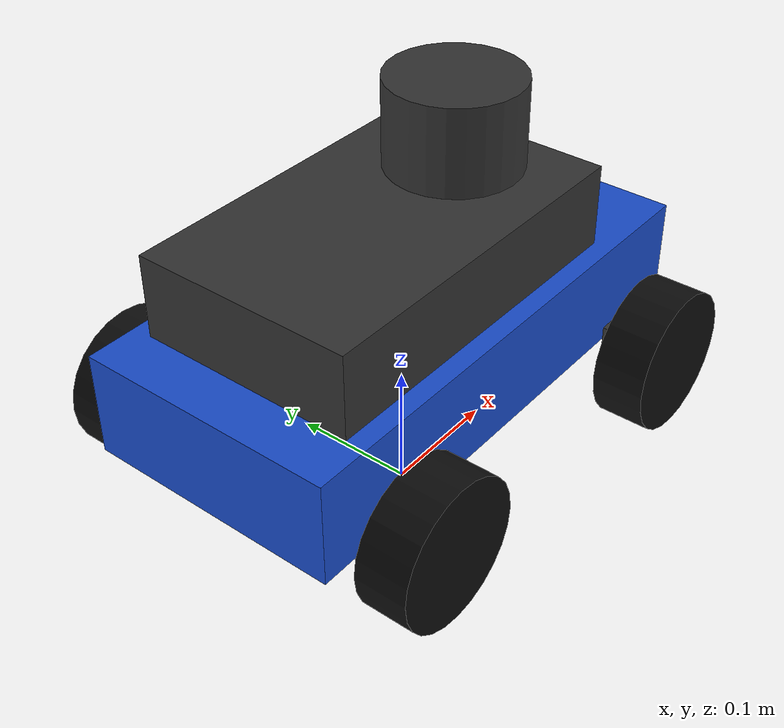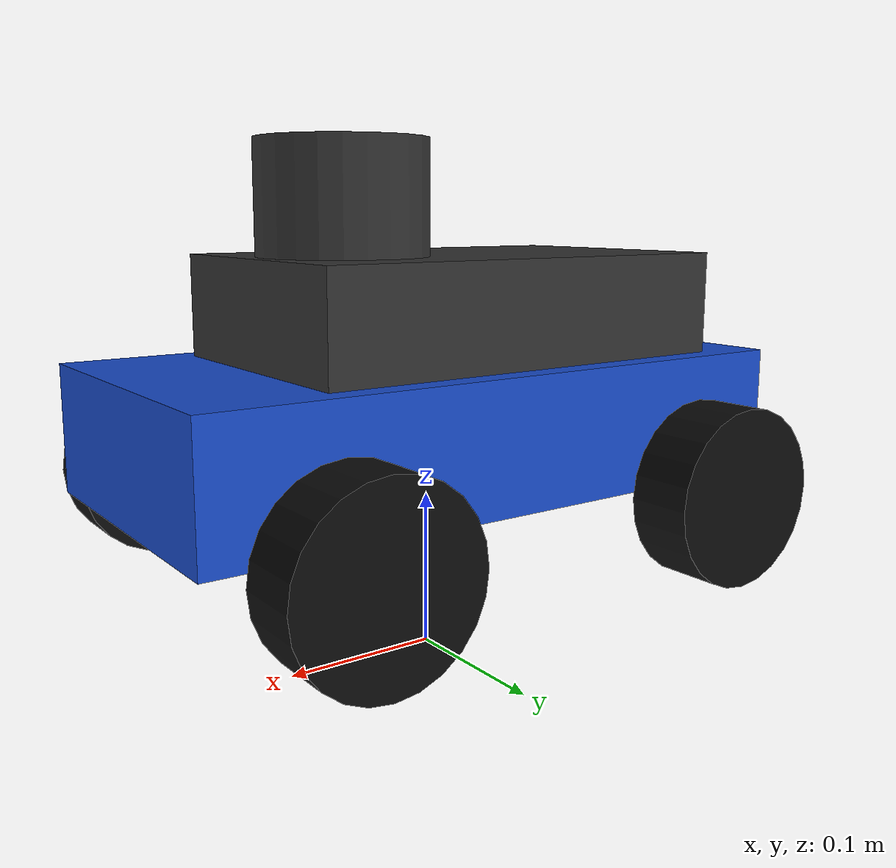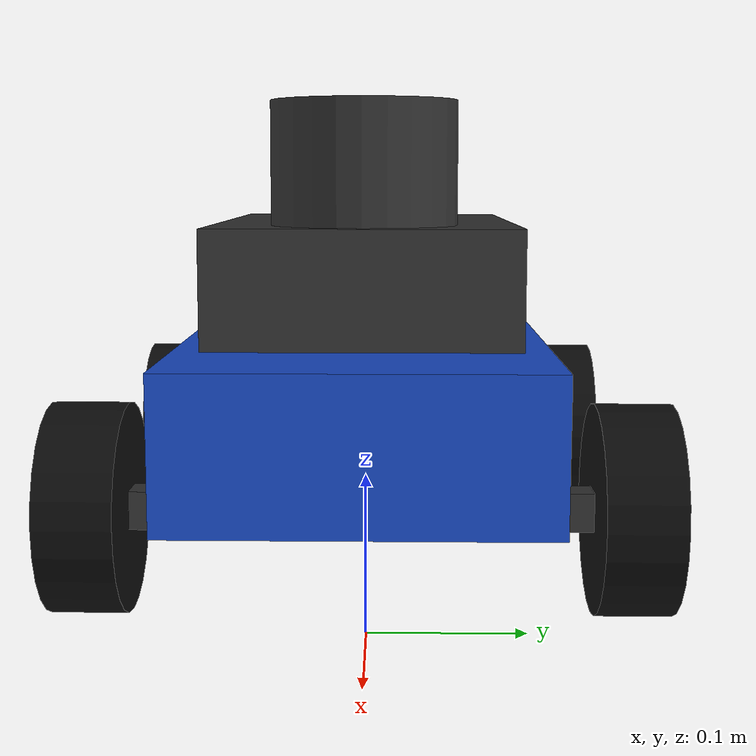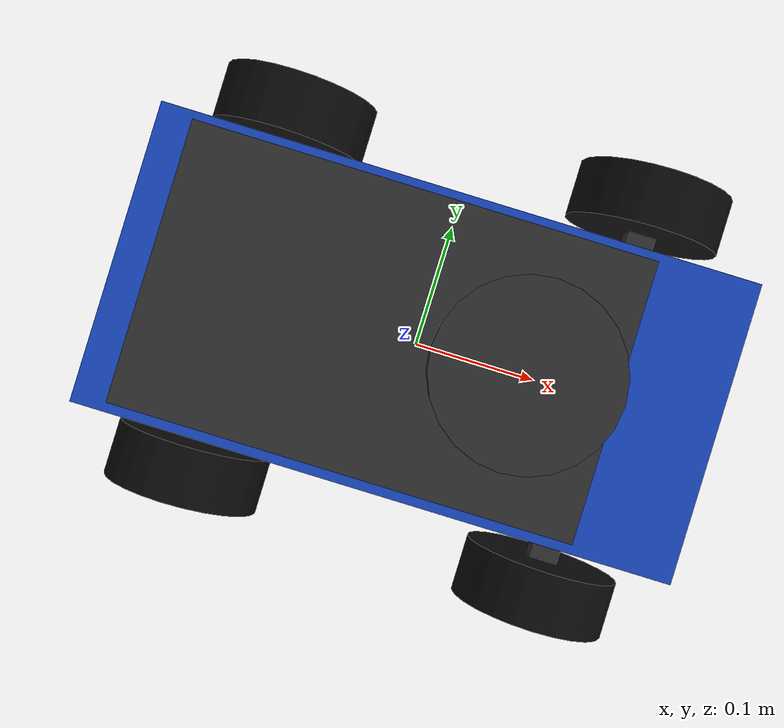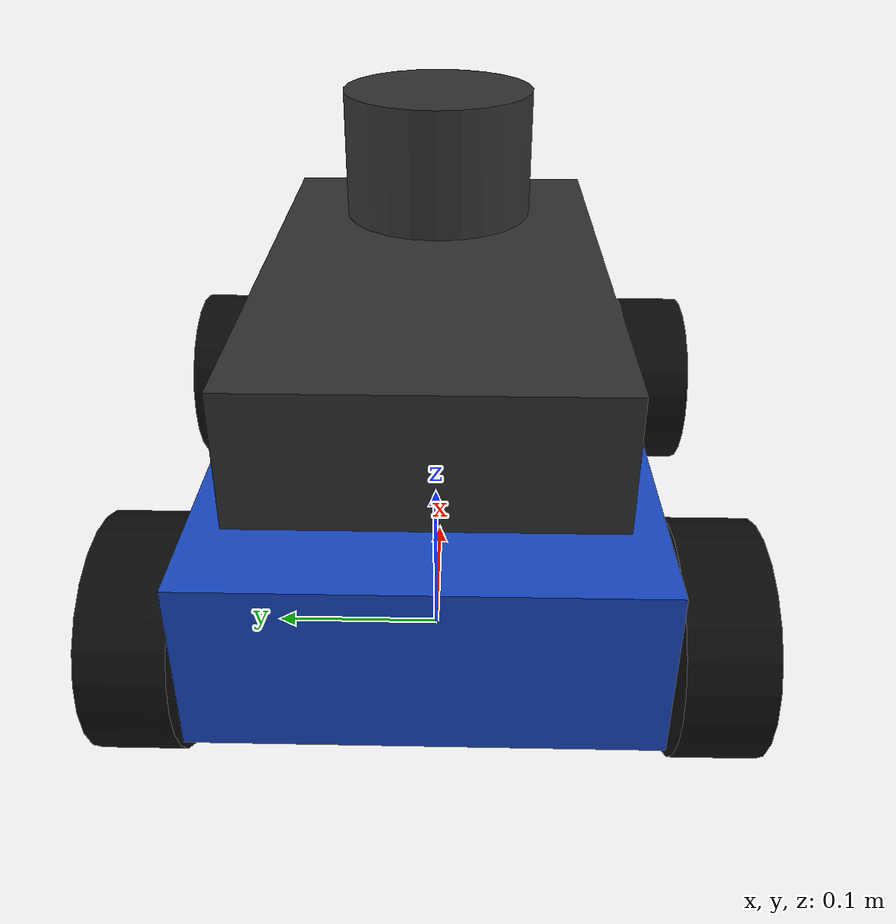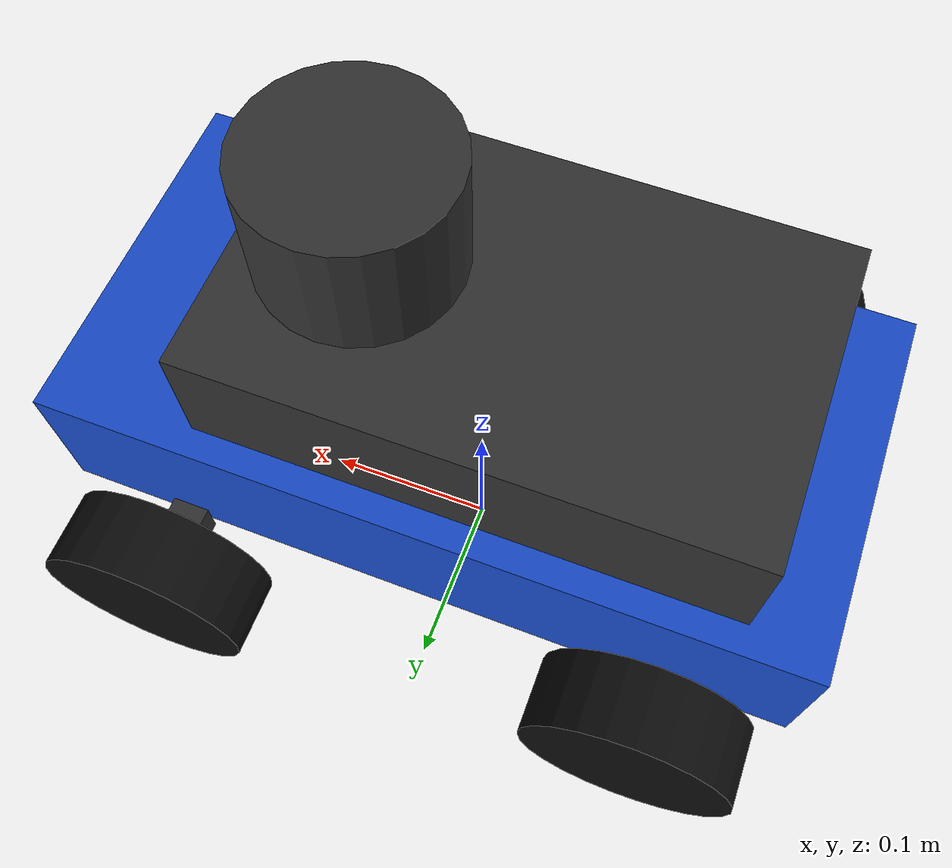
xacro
<?xml version="1.0"?>
<robot name="rc_car" xmlns:xacro="http://www.ros.org/wiki/xacro">

  <!--
    RC Car URDF
    Steering: Ackermann — front wheels steer, rear wheels drive
    Sensors:  IMU, 3D LiDAR, front camera
  -->

  <xacro:include filename="$(find rc_car_description)/urdf/materials.xacro"/>
   <xacro:include filename="$(find rc_car_description)/urdf/rc_car.ros2_control.xacro"/>
  <xacro:include filename="$(find rc_car_description)/urdf/ignition_plugins.xacro"/>

  <!-- ============================================================
       PARAMETERS
  ============================================================ -->
  <xacro:property name="chassis_length"   value="0.40"/>
  <xacro:property name="chassis_width"    value="0.20"/>
  <xacro:property name="chassis_height"   value="0.08"/>
  <xacro:property name="chassis_mass"     value="1.0"/>

  <xacro:property name="wheel_radius"     value="0.055"/>
  <xacro:property name="wheel_width"      value="0.04"/>
  <xacro:property name="wheel_mass"       value="0.20"/>

  <xacro:property name="wheelbase"        value="0.26"/>
  <xacro:property name="track_width"      value="0.22"/>
  <xacro:property name="ground_clearance" value="0.055"/>

  <xacro:property name="max_steer"        value="0.6"/>
  <xacro:property name="hub_size"         value="0.02"/>
  <xacro:property name="hub_mass"         value="0.05"/>

  <xacro:property name="front_x" value="${wheelbase/2}"/>
  <xacro:property name="rear_x"  value="${-wheelbase/2}"/>
  <xacro:property name="axle_y"  value="${track_width/2}"/>
  <xacro:property name="axle_z"  value="0"/>

  <!-- ============================================================
       INERTIA MACROS
  ============================================================ -->
  <xacro:macro name="box_inertia" params="m l w h">
    <inertial>
      <origin xyz="0 0 0" rpy="0 0 0"/>
      <mass value="${m}"/>
      <inertia ixx="${m*(w*w+h*h)/12}" ixy="0" ixz="0"
               iyy="${m*(l*l+h*h)/12}" iyz="0"
               izz="${m*(l*l+w*w)/12}"/>
    </inertial>
  </xacro:macro>

  <xacro:macro name="cyl_inertia" params="m r h">
    <inertial>
      <origin xyz="0 0 0" rpy="0 0 0"/>
      <mass value="${m}"/>
      <inertia ixx="${m*(3*r*r+h*h)/12}" ixy="0" ixz="0"
               iyy="${m*(3*r*r+h*h)/12}" iyz="0"
               izz="${m*r*r/2}"/>
    </inertial>
  </xacro:macro>

  <xacro:macro name="dummy_inertia">
    <inertial>
      <origin xyz="0 0 0" rpy="0 0 0"/>
      <mass value="0.001"/>
      <inertia ixx="0.000001" ixy="0" ixz="0"
               iyy="0.000001" iyz="0"
               izz="0.000001"/>
    </inertial>
  </xacro:macro>

  <!-- ============================================================
       BASE FOOTPRINT
  ============================================================ -->
  <link name="base_footprint">
    <xacro:dummy_inertia/>
  </link>

  <joint name="base_footprint_joint" type="fixed">
    <parent link="base_footprint"/>
    <child  link="base_link"/>
    <origin xyz="0 0 ${wheel_radius + ground_clearance}" rpy="0 0 0"/>
  </joint>

  <!-- ============================================================
       CHASSIS
  ============================================================ -->
  <link name="base_link">
    <inertial>
      <origin xyz="0 0 ${chassis_height/2}" rpy="0 0 0"/>
      <mass value="${chassis_mass}"/>
      <inertia
        ixx="${chassis_mass*(chassis_width*chassis_width+chassis_height*chassis_height)/12}"
        ixy="0" ixz="0"
        iyy="${chassis_mass*(chassis_length*chassis_length+chassis_height*chassis_height)/12}"
        iyz="0"
        izz="${chassis_mass*(chassis_length*chassis_length+chassis_width*chassis_width)/12}"/>
    </inertial>
    <visual>
      <origin xyz="0 0 ${chassis_height/2}" rpy="0 0 0"/>
      <geometry><box size="${chassis_length} ${chassis_width} ${chassis_height}"/></geometry>
      <material name="blue"/>
    </visual>
    <collision>
      <origin xyz="0 0 ${chassis_height/2}" rpy="0 0 0"/>
      <geometry><box size="${chassis_length} ${chassis_width} ${chassis_height}"/></geometry>
    </collision>
  </link>

  <link name="body_top">
    <inertial>
      <origin xyz="0 0 ${chassis_height*0.4}" rpy="0 0 0"/>
      <mass value="0.1"/>
      <inertia ixx="0.0001" ixy="0" ixz="0"
               iyy="0.0001" iyz="0"
               izz="0.0001"/>
    </inertial>
    <visual>
      <origin xyz="0 0 ${chassis_height*0.4}" rpy="0 0 0"/>
      <geometry><box size="${chassis_length*0.7} ${chassis_width*0.85} ${chassis_height*0.8}"/></geometry>
      <material name="dark_grey"/>
    </visual>
    <collision>
      <origin xyz="0 0 ${chassis_height*0.4}" rpy="0 0 0"/>
      <geometry><box size="${chassis_length*0.7} ${chassis_width*0.85} ${chassis_height*0.8}"/></geometry>
    </collision>
  </link>
  <joint name="body_top_joint" type="fixed">
    <parent link="base_link"/>
    <child  link="body_top"/>
    <origin xyz="${-chassis_length*0.05} 0 ${chassis_height}" rpy="0 0 0"/>
  </joint>

  <!-- ============================================================
       FRONT STEERING HUBS
  ============================================================ -->
  <link name="front_left_steer_link">
    <inertial>
      <origin xyz="0 0 0" rpy="0 0 0"/>
      <mass value="${hub_mass}"/>
      <inertia ixx="0.000001" ixy="0" ixz="0"
               iyy="0.000001" iyz="0"
               izz="0.000001"/>
    </inertial>
    <visual>
      <origin xyz="0 0 0" rpy="0 0 0"/>
      <geometry><box size="${hub_size} ${hub_size} ${hub_size}"/></geometry>
      <material name="dark_grey"/>
    </visual>
    <collision>
      <origin xyz="0 0 0" rpy="0 0 0"/>
      <geometry><box size="${hub_size} ${hub_size} ${hub_size}"/></geometry>
    </collision>
  </link>
  <joint name="front_left_steer_joint" type="revolute">
    <parent link="base_link"/>
    <child  link="front_left_steer_link"/>
    <origin xyz="${front_x} ${axle_y} ${axle_z}" rpy="0 0 0"/>
    <axis xyz="0 0 1"/>
    <limit lower="${-max_steer}" upper="${max_steer}" effort="10.0" velocity="5.0"/>
    <dynamics damping="0.5" friction="0.1"/>
  </joint>

  <link name="front_right_steer_link">
    <inertial>
      <origin xyz="0 0 0" rpy="0 0 0"/>
      <mass value="${hub_mass}"/>
      <inertia ixx="0.000001" ixy="0" ixz="0"
               iyy="0.000001" iyz="0"
               izz="0.000001"/>
    </inertial>
    <visual>
      <origin xyz="0 0 0" rpy="0 0 0"/>
      <geometry><box size="${hub_size} ${hub_size} ${hub_size}"/></geometry>
      <material name="dark_grey"/>
    </visual>
    <collision>
      <origin xyz="0 0 0" rpy="0 0 0"/>
      <geometry><box size="${hub_size} ${hub_size} ${hub_size}"/></geometry>
    </collision>
  </link>
  <joint name="front_right_steer_joint" type="revolute">
    <parent link="base_link"/>
    <child  link="front_right_steer_link"/>
    <origin xyz="${front_x} ${-axle_y} ${axle_z}" rpy="0 0 0"/>
    <axis xyz="0 0 1"/>
    <limit lower="${-max_steer}" upper="${max_steer}" effort="10.0" velocity="5.0"/>
    <dynamics damping="0.5" friction="0.1"/>
  </joint>

  <!-- ============================================================
       WHEEL MACRO
  ============================================================ -->
  <xacro:macro name="wheel" params="name parent reflect_y">
    <link name="${name}_wheel_link">
      <inertial>
        <origin xyz="0 0 0" rpy="0 0 0"/>
        <mass value="${wheel_mass}"/>
        <inertia
          ixx="${wheel_mass*(3*wheel_radius*wheel_radius+wheel_width*wheel_width)/12}"
          ixy="0" ixz="0"
          iyy="${wheel_mass*(3*wheel_radius*wheel_radius+wheel_width*wheel_width)/12}"
          iyz="0"
          izz="${wheel_mass*wheel_radius*wheel_radius/2}"/>
      </inertial>
      <visual>
        <origin xyz="0 0 0" rpy="${pi/2} 0 0"/>
        <geometry><cylinder radius="${wheel_radius}" length="${wheel_width}"/></geometry>
        <material name="black"/>
      </visual>
      <collision>
        <origin xyz="0 0 0" rpy="${pi/2} 0 0"/>
        <geometry><cylinder radius="${wheel_radius}" length="${wheel_width}"/></geometry>
      </collision>
    </link>
    <joint name="${name}_wheel_joint" type="continuous">
      <parent link="${parent}"/>
      <child  link="${name}_wheel_link"/>
      <origin xyz="0 ${reflect_y*(hub_size/2+wheel_width/2)} 0" rpy="0 0 0"/>
      <axis xyz="0 1 0"/>
      <dynamics damping="0.01" friction="0.1"/>
    </joint>
  </xacro:macro>

  <xacro:wheel name="front_left"  parent="front_left_steer_link"  reflect_y="1"/>
  <xacro:wheel name="front_right" parent="front_right_steer_link" reflect_y="-1"/>

  <!-- ============================================================
       REAR WHEELS
  ============================================================ -->
  <link name="rear_left_wheel_link">
    <inertial>
      <origin xyz="0 0 0" rpy="0 0 0"/>
      <mass value="${wheel_mass}"/>
      <inertia
        ixx="${wheel_mass*(3*wheel_radius*wheel_radius+wheel_width*wheel_width)/12}"
        ixy="0" ixz="0"
        iyy="${wheel_mass*(3*wheel_radius*wheel_radius+wheel_width*wheel_width)/12}"
        iyz="0"
        izz="${wheel_mass*wheel_radius*wheel_radius/2}"/>
    </inertial>
    <visual>
      <origin xyz="0 0 0" rpy="${pi/2} 0 0"/>
      <geometry><cylinder radius="${wheel_radius}" length="${wheel_width}"/></geometry>
      <material name="black"/>
    </visual>
    <collision>
      <origin xyz="0 0 0" rpy="${pi/2} 0 0"/>
      <geometry><cylinder radius="${wheel_radius}" length="${wheel_width}"/></geometry>
    </collision>
  </link>
  <joint name="rear_left_wheel_joint" type="continuous">
    <parent link="base_link"/>
    <child  link="rear_left_wheel_link"/>
    <origin xyz="${rear_x} ${axle_y+wheel_width/2} ${axle_z}" rpy="0 0 0"/>
    <axis xyz="0 1 0"/>
    <dynamics damping="0.01" friction="0.1"/>
  </joint>

  <link name="rear_right_wheel_link">
    <inertial>
      <origin xyz="0 0 0" rpy="0 0 0"/>
      <mass value="${wheel_mass}"/>
      <inertia
        ixx="${wheel_mass*(3*wheel_radius*wheel_radius+wheel_width*wheel_width)/12}"
        ixy="0" ixz="0"
        iyy="${wheel_mass*(3*wheel_radius*wheel_radius+wheel_width*wheel_width)/12}"
        iyz="0"
        izz="${wheel_mass*wheel_radius*wheel_radius/2}"/>
    </inertial>
    <visual>
      <origin xyz="0 0 0" rpy="${pi/2} 0 0"/>
      <geometry><cylinder radius="${wheel_radius}" length="${wheel_width}"/></geometry>
      <material name="black"/>
    </visual>
    <collision>
      <origin xyz="0 0 0" rpy="${pi/2} 0 0"/>
      <geometry><cylinder radius="${wheel_radius}" length="${wheel_width}"/></geometry>
    </collision>
  </link>
  <joint name="rear_right_wheel_joint" type="continuous">
    <parent link="base_link"/>
    <child  link="rear_right_wheel_link"/>
    <origin xyz="${rear_x} ${-(axle_y+wheel_width/2)} ${axle_z}" rpy="0 0 0"/>
    <axis xyz="0 1 0"/>
    <dynamics damping="0.01" friction="0.1"/>
  </joint>

  <!-- ============================================================
       IMU LINK
  ============================================================ -->
  <link name="imu_link">
    <xacro:dummy_inertia/>
    <visual>
      <origin xyz="0 0 0" rpy="0 0 0"/>
      <geometry><box size="0.03 0.03 0.015"/></geometry>
      <material name="green"/>
    </visual>
    <collision>
      <origin xyz="0 0 0" rpy="0 0 0"/>
      <geometry><box size="0.03 0.03 0.015"/></geometry>
    </collision>
  </link>
  <joint name="imu_joint" type="fixed">
    <parent link="base_link"/>
    <child  link="imu_link"/>
    <origin xyz="0 0 ${chassis_height}" rpy="0 0 0"/>
  </joint>

  <!-- ============================================================
       LIDAR LINK
  ============================================================ -->
  <link name="lidar_link">
    <inertial>
      <origin xyz="0 0 0" rpy="0 0 0"/>
      <mass value="0.83"/>
      <inertia ixx="0.000830" ixy="0" ixz="0"
               iyy="0.000830" iyz="0"
               izz="0.001027"/>
    </inertial>
    <visual>
      <origin xyz="0 0 0" rpy="0 0 0"/>
      <geometry><cylinder radius="0.0516" length="0.0717"/></geometry>
      <material name="dark_grey"/>
    </visual>
    <collision>
      <origin xyz="0 0 0" rpy="0 0 0"/>
      <geometry><cylinder radius="0.0516" length="0.0717"/></geometry>
    </collision>
  </link>
  <joint name="lidar_joint" type="fixed">
    <parent link="base_link"/>
    <child  link="lidar_link"/>
    <origin xyz="${chassis_length*0.15} 0 ${chassis_height*2.2}" rpy="0 0 0"/>
  </joint>

  <!-- ============================================================
       CAMERA LINKS
  ============================================================ -->
  <link name="camera_link">
    <xacro:dummy_inertia/>
    <visual>
      <origin xyz="0 0 0" rpy="0 0 0"/>
      <geometry><box size="0.02 0.04 0.02"/></geometry>
      <material name="dark_grey"/>
    </visual>
    <collision>
      <origin xyz="0 0 0" rpy="0 0 0"/>
      <geometry><box size="0.02 0.04 0.02"/></geometry>
    </collision>
  </link>
  <joint name="camera_joint" type="fixed">
    <parent link="base_link"/>
    <child  link="camera_link"/>
    <origin xyz="${chassis_length*0.45} 0 ${chassis_height*0.8}" rpy="0 0 0"/>
  </joint>

  <link name="camera_optical_link">
    <xacro:dummy_inertia/>
  </link>
  <joint name="camera_optical_joint" type="fixed">
    <parent link="camera_link"/>
    <child  link="camera_optical_link"/>
    <origin xyz="0 0 0" rpy="${-pi/2} 0 ${-pi/2}"/>
  </joint>

</robot>

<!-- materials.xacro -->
<robot xmlns:xacro="http://www.ros.org/wiki/xacro">
  <material name="blue">      <color rgba="0.1 0.3 0.8 1.0"/></material>
  <material name="dark_grey"> <color rgba="0.2 0.2 0.2 1.0"/></material>
  <material name="black">     <color rgba="0.05 0.05 0.05 1.0"/></material>
  <material name="green">     <color rgba="0.1 0.8 0.1 1.0"/></material>
  <material name="red">       <color rgba="0.8 0.1 0.1 1.0"/></material>
  <material name="white">     <color rgba="0.95 0.95 0.95 1.0"/></material>
  <material name="orange">    <color rgba="0.9 0.5 0.0 1.0"/></material>
</robot>
